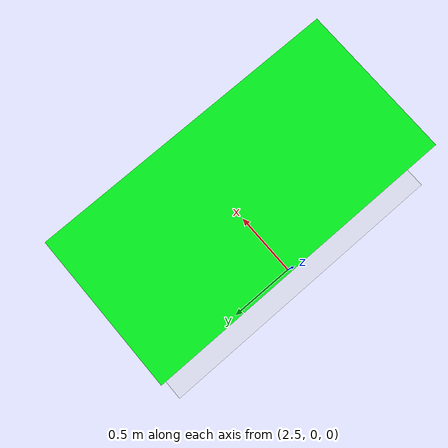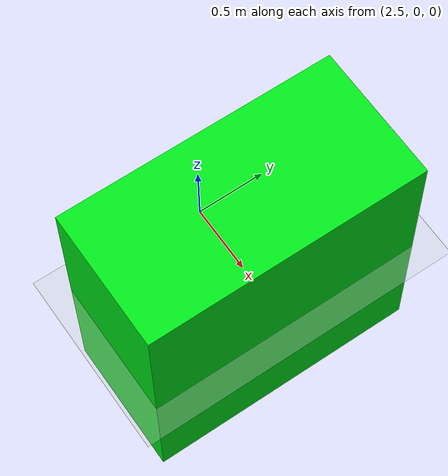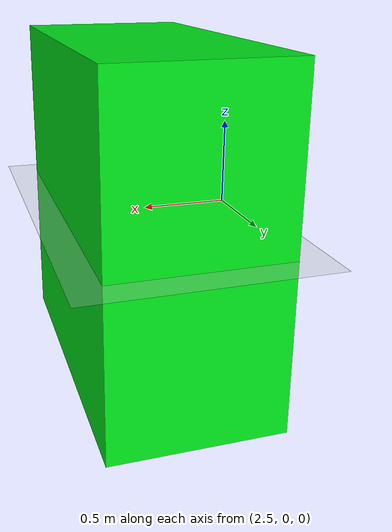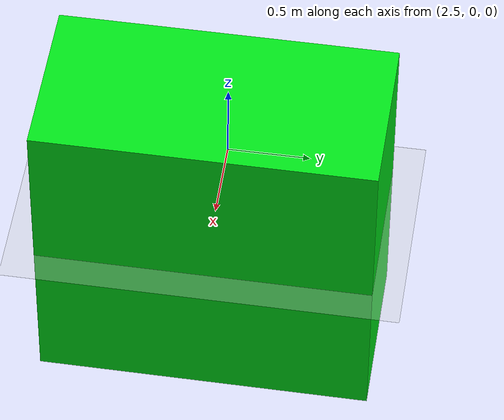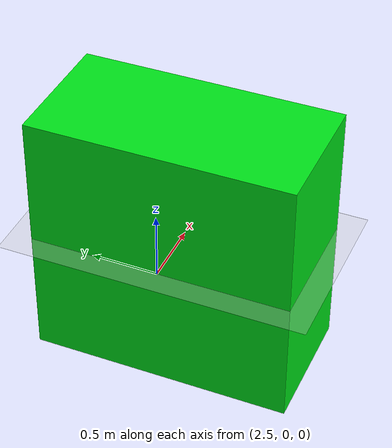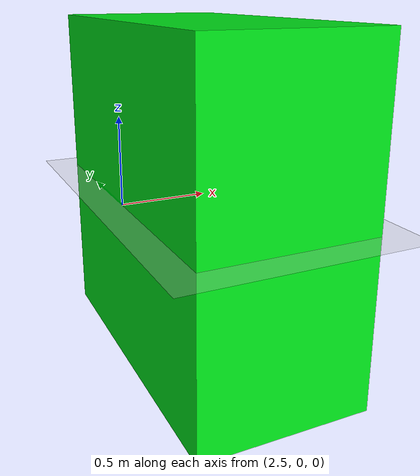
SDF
<?xml version="1.0" ?>
<sdf version="1.6">
  <world name="default">
    <include>
      <uri>model://ground_plane</uri>
    </include>
    <include>
      <uri>model://sun</uri>
    </include>

    <model name="model_2">
        <pose>3.0 0.0 0.0 0.0 0.0 0.0</pose>
        <link name="link_1">
            <pose>0.0 0.0 0.0 0.0 0.0 0.0</pose>
            <inertial>
                <pose>0.0 0.0 0.0 0.0 0.0 0.0</pose>
                <inertia>
                    <ixx>1.0</ixx>
                    <ixy>0.0</ixy>
                    <ixz>0.0</ixz>
                    <iyy>1.0</iyy>
                    <iyz>0.0</iyz>
                    <izz>1.0</izz>
                </inertia>
                <mass>10.0</mass>
            </inertial>
            <visual name="visual_box">
                <pose>0.0 0.0 0.0 0.0 0.0 0.0</pose>
                <geometry>
                    <box>
                        <size>1 2 2</size>
                    </box>
                </geometry>
                <material>
                    <ambient>0.00 0.9 0.1 1.0</ambient>
                    <script>Gazebo/Green</script>
                </material>
                <cast_shadows>true</cast_shadows>
                <laser_retro>100.0</laser_retro>
            </visual>
            <collision name="collision_box">
                <pose>0.0 0.0 0.0 0.0 0.0 0.0</pose>
                <max_contacts>250</max_contacts>
                <geometry>
                    <box>
                        <size>1 2 2</size>
                    </box>
                </geometry>
                <surface>
                    <friction>
                        <ode>
                            <mu>0.5</mu>
                            <mu2>0.2</mu2>
                            <fdir1>1.0 0 0</fdir1>
                            <slip1>0</slip1>
                            <slip2>0</slip2>
                        </ode>
                    </friction>
                    <bounce>
                        <restitution_coefficient>0</restitution_coefficient>
                        <threshold>1000000.0</threshold>
                    </bounce>
                    <contact>
                        <ode>
                            <soft_cfm>0</soft_cfm>
                            <soft_erp>0.2</soft_erp>
                            <kp>1e15</kp>
                            <kd>1e13</kd>
                            <max_vel>100.0</max_vel>
                            <min_depth>0.0001</min_depth>
                        </ode>
                    </contact>
                </surface>
                <laser_retro>100.0</laser_retro>
            </collision>
            <gravity>false</gravity>
            <self_collide>true</self_collide>
            <kinematic>false</kinematic>
        </link>
        <static>false</static>
    </model>

    <model name="camera_model">
      <pose>0 0 0 0 0 0</pose>
      <link name="my_link">
        <inertial>
          <inertia>
            <ixx>1</ixx>
            <ixy>0</ixy>
            <ixz>0</ixz>
            <iyy>1</iyy>
            <iyz>0</iyz>
            <izz>1</izz>
          </inertia>
          <mass>1.0</mass>
        </inertial>
        <collision name="collision">
          <geometry>
            <box>
              <size>1 1 1</size>
            </box>
          </geometry>
        </collision>
        <sensor name="camera" type="depth">
          <camera>
            <horizontal_fov>1.04719755</horizontal_fov>
            <image>
              <width>640</width>
              <height>480</height>
              <format>B8G8R8</format>
            </image>
            <clip>
              <near>0.1</near>
              <far>20</far>
            </clip>
            <depth_camera>
              <output>points;normals</output>
            </depth_camera>
          </camera>
          <plugin filename="libDepthCameraPlugin.so" name="depth_camera_plugin" />
          <always_on>true</always_on>
          <update_rate>10.0</update_rate>
        </sensor>
      </link>
      <static>true</static>
    </model>
  </world>
</sdf>
